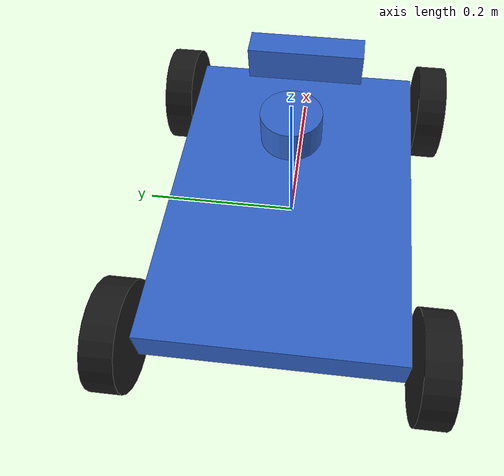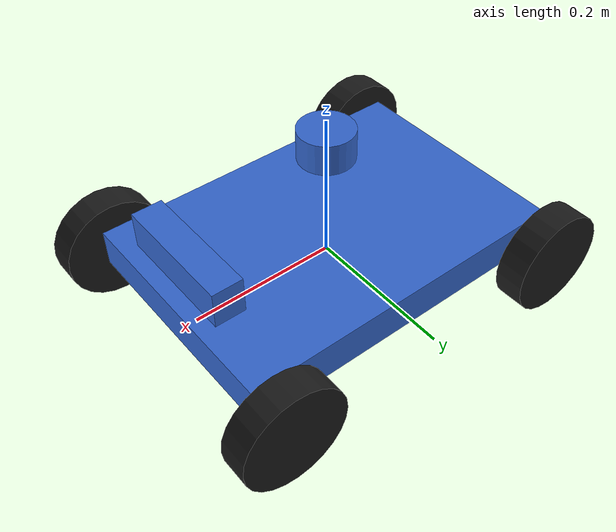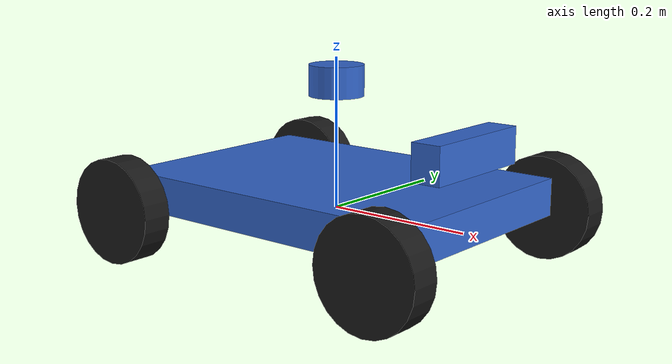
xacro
<?xml version="1.0"?>
<robot name="mi_robot" xmlns:xacro="http://www.ros.org/wiki/xacro">

  <!-- ===================== Parámetros de la variante ===================== -->
  <!-- TODO (Parte 1): reemplace cada ${TODO} por el valor de su variante -->
  <xacro:property name="rueda_radio" value="${0.07}"/>
  <xacro:property name="distancia_ejes" value="${0.42}"/>      <!-- wheelbase (m) -->
  <xacro:property name="separacion_ruedas" value="${0.38}"/>   <!-- track (m) -->
  <xacro:property name="lx" value="${distancia_ejes / 2.0}"/>
  <xacro:property name="ly" value="${separacion_ruedas / 2.0}"/>
  <xacro:property name="rueda_ancho" value="0.04"/>
  <xacro:property name="rueda_masa" value="0.3"/>

  <!-- LiDAR (asignado) -->
  <xacro:property name="x_lidar" value="${0}"/>
  <xacro:property name="z_lidar" value="${0.17}"/>
  <xacro:property name="update_rate" value="${8}"/>
  <xacro:property name="samples" value="${2000}"/>
  <xacro:property name="lidar_masa" value="${0.190}"/>
  <xacro:property name="max_range" value="${25}"/>
  <xacro:property name="min_range" value="${0.2}"/>

  <!-- Camara (asignado) -->
  <xacro:property name="x_camara" value="${0.2}"/>
  <xacro:property name="z_camara" value="${0.1}"/>
  <xacro:property name="camara_masa" value="${0.31}"/>
  <xacro:property name="clip_near_d" value="${0.6}"/>
  <xacro:property name="clip_far_d" value="${8.0}"/>
  <xacro:property name="clip_near" value="${0.4}"/>
  <xacro:property name="clip_far" value="${2.0}"/>
  <xacro:property name="w_camara" value="${0.165}"/>
  <xacro:property name="h_camara" value="${0.048}"/>
  <xacro:property name="d_camara" value="${0.04}"/>
  <xacro:property name="camara_rate" value="${30}"/> <!-- fps -->
  <xacro:property name="image_width" value="${640}"/>
  <xacro:property name="image_height" value="${480}"/>
  <xacro:property name="horizontal_fov" value="${1.01927}"/>

  <!-- Chasis (dado) -->
  <xacro:property name="chasis_largo" value="${distancia_ejes + 0.04}"/>
  <xacro:property name="chasis_ancho" value="${separacion_ruedas - rueda_ancho - 0.02}"/>
  <xacro:property name="chasis_alto" value="0.05"/>
  <xacro:property name="chasis_masa" value="3.0"/>

  <!-- ===================== Inercias (dadas) ===================== -->
  <xacro:macro name="inercia_caja" params="m x y z">
    <inertia ixx="${m*(y*y + z*z)/12.0}" ixy="0" ixz="0"
             iyy="${m*(x*x + z*z)/12.0}" iyz="0"
             izz="${m*(x*x + y*y)/12.0}"/>
  </xacro:macro>
  <!-- Cilindro con eje a lo largo de z local -->
  <xacro:macro name="inercia_cilindro" params="m r h">
    <inertia ixx="${m*(3*r*r + h*h)/12.0}" ixy="0" ixz="0"
             iyy="${m*(3*r*r + h*h)/12.0}" iyz="0"
             izz="${m*r*r/2.0}"/>
  </xacro:macro>

  <!-- ===================== Chasis (dado) ===================== -->
  <link name="base_link">
    <visual>
      <origin xyz="0 0 0.02" rpy="0 0 0"/>
      <geometry><box size="${chasis_largo} ${chasis_ancho} ${chasis_alto}"/></geometry>
      <material name="azul"><color rgba="0.2 0.4 0.8 1"/></material>
    </visual>
    <collision>
      <origin xyz="0 0 0.02" rpy="0 0 0"/>
      <geometry><box size="${chasis_largo} ${chasis_ancho} ${chasis_alto}"/></geometry>
    </collision>
    <inertial>
      <origin xyz="0 0 0.02" rpy="0 0 0"/>
      <mass value="${chasis_masa}"/>
      <xacro:inercia_caja m="${chasis_masa}" x="${chasis_largo}" y="${chasis_ancho}" z="${chasis_alto}"/>
    </inertial>
  </link>

  <!-- ===================== Ruedas (Parte 1) ===================== -->
  <xacro:macro name="rueda" params="prefijo x_signo y_signo">
    <link name="rueda_${prefijo}">
      <visual>
        <geometry><cylinder radius="${rueda_radio}" length="${rueda_ancho}"/></geometry>
        <material name="negro"><color rgba="0.1 0.1 0.1 1"/></material>
      </visual>
      <collision>
        <geometry><sphere radius="${rueda_radio}"/></geometry>
      </collision>
      <inertial>
        <origin xyz="0 0 0" rpy="0 0 0"/>
        <mass value="${rueda_masa}"/>
        <xacro:inercia_cilindro m="${rueda_masa}" r="${rueda_radio}" h="${rueda_ancho}"/>
      </inertial>

    </link>
    <joint name="joint_rueda_${prefijo}" type="continuous">
      <axis xyz="0 0 1"/>
      <parent link="base_link"/>
      <child link="rueda_${prefijo}"/>
      <origin xyz="${x_signo*lx} ${y_signo*ly} 0" rpy="-1.5708 0 0"/>
    </joint>
  </xacro:macro>

  <xacro:rueda prefijo="del_izq" x_signo="1" y_signo="1"/>
  <xacro:rueda prefijo="del_der" x_signo="1" y_signo="-1"/>
  <xacro:rueda prefijo="tra_izq" x_signo="-1" y_signo="1"/>
  <xacro:rueda prefijo="tra_der" x_signo="-1" y_signo="-1"/>
  <!-- TODO: instanciar del_der, tra_izq y tra_der -->

  <!-- ===================== RPLIDAR A3 (Parte 2) ===================== -->
  <!-- TODO:link  "lidar_link" (cilindro) con dimensiones y masa de la hoja de datos:
       visual, collision e inertial -->
  <link name="lidar_link">
    <visual>
      <origin xyz="0 0 0" rpy="0 0 0"/>
      <geometry><cylinder radius="${0.0725/2}" length="0.041"/></geometry>
      <material name="azul"><color rgba="0.2 0.4 0.8 1"/></material>
    </visual>
    <collision>
      <origin xyz="0 0 0" rpy="0 0 0"/>
      <geometry><cylinder radius="${0.0725/2}" length="0.041"/></geometry>
    </collision>
    <inertial>
      <origin xyz="0 0 0" rpy="0 0 0"/>
      <mass value="${lidar_masa}"/>
      <xacro:inercia_cilindro m="${lidar_masa}" r="${0.0725/2}" h="0.041"/>
    </inertial>
  </link>
  <joint name="joint_lidar" type="fixed">
    <parent link="base_link"/>
    <child link="lidar_link"/>
    <origin xyz="${x_lidar} 0 ${z_lidar}" rpy="0 0 0"/>
  </joint>
  <!-- TODO: joint fijo "joint_lidar" base_link -> lidar_link en la posición de su variante -->

  <gazebo reference="lidar_link">
    <sensor name="rplidar_a3" type="gpu_lidar">
      <topic>/scan</topic>
      <gz_frame_id>lidar_link</gz_frame_id>
      <update_rate>${update_rate}</update_rate>
      <always_on>1</always_on>
      <visualize>true</visualize>
      <lidar>
        <scan>
          <horizontal>
            <samples>${samples}</samples>          <!-- muestras por vuelta -->
            <resolution>1</resolution>
            <min_angle>${-pi}</min_angle>
            <max_angle>${pi}</max_angle>
          </horizontal>
        </scan>
        <range>
          <min>${min_range}</min>
          <max>${max_range}</max>
          <resolution>0.01</resolution>
        </range>
      </lidar>
    </sensor>
  </gazebo>

  <!-- ===================== Orbbec Astra (Parte 2) ===================== -->
  <!-- TODO: link "camara_link" (caja) con dimensiones y masa de la hoja de datos -->
  <link name="camara_link">
    <visual>
      <origin xyz="0 0 0" rpy="0 0 0"/>
      <geometry><box size="${d_camara} ${w_camara} ${h_camara}"/> </geometry>
      <material name="azul"><color rgba="0.2 0.4 0.8 1"/></material>
    </visual>
    <collision>
      <origin xyz="0 0 0" rpy="0 0 0"/>
      <geometry><box size="${d_camara} ${w_camara} ${h_camara}"/></geometry>
    </collision>
    <inertial>
      <origin xyz="0 0 0" rpy="0 0 0"/>
      <mass value="${camara_masa}"/>
      <xacro:inercia_caja m="${camara_masa}" x="${d_camara}" y="${w_camara}" z="${h_camara}"/>
    </inertial>
  </link>

  <!-- TODO: joint fijo "joint_camara" base_link -> camara_link en la posición de su variante -->
  <joint name="joint_camara" type="fixed">
    <parent link="base_link"/>
    <child link="camara_link"/>
    <origin xyz="${x_camara} 0 ${z_camara}" rpy="0 0 0"/>
  </joint>

  <!-- TODO: link "camara_optica_link" y joint fijo "joint_camara_optica" desde
       camara_link con rpy = (-π/2, 0, -π/2) (REP-103) -->
  <link name="camara_optica_link">
  </link>
  <joint name="joint_camara_optica" type="fixed">
    <parent link="camara_link"/>
    <child link="camara_optica_link"/>
    <origin xyz="0 0 0" rpy="-1.5708 0 -1.5708"/>
  </joint>

  <gazebo reference="camara_link">
    <sensor name="astra" type="rgbd_camera">
      <topic>/camara</topic>
      <gz_frame_id>camara_link</gz_frame_id>
      <update_rate>${camara_rate}</update_rate>
      <always_on>1</always_on>
      <camera>
        <horizontal_fov>${horizontal_fov}</horizontal_fov>   <!-- en radianes -->
        <image>
          <width>${image_width}</width>
          <height>${image_height}</height>
          <format>R8G8B8</format>
        </image>
        <clip>
          <near>${clip_near_d}</near>
          <far>${clip_far_d}</far>
        </clip>
        <depth_camera>
          <clip>
            <near>${clip_near_d}</near>
            <far>${clip_far_d}</far>
          </clip>
        </depth_camera>
      </camera>
    </sensor>
  </gazebo>

  <!-- ===================== Plugins de Gazebo (Parte 1) ===================== -->
  <xacro:macro name="motor" params="prefijo">
    <plugin filename="gz-sim-joint-controller-system" name="gz::sim::systems::JointController">
      <joint_name>joint_rueda_${prefijo}</joint_name>
      <use_force_commands>false</use_force_commands>
      <topic>/vel_rueda_${prefijo}</topic>
    </plugin>
  </xacro:macro>

  <gazebo>
    <!-- TODO: motores de del_der, tra_izq y tra_der -->
    <xacro:motor prefijo="del_izq"/>
    <xacro:motor prefijo="del_der"/>
    <xacro:motor prefijo="tra_izq"/>
    <xacro:motor prefijo="tra_der"/>

    <!-- TODO: plugin gz-sim-joint-state-publisher-system (encoders) -->
    <plugin filename="gz-sim-joint-state-publisher-system"
            name="gz::sim::systems::JointStatePublisher"/>
  </gazebo>

</robot>
